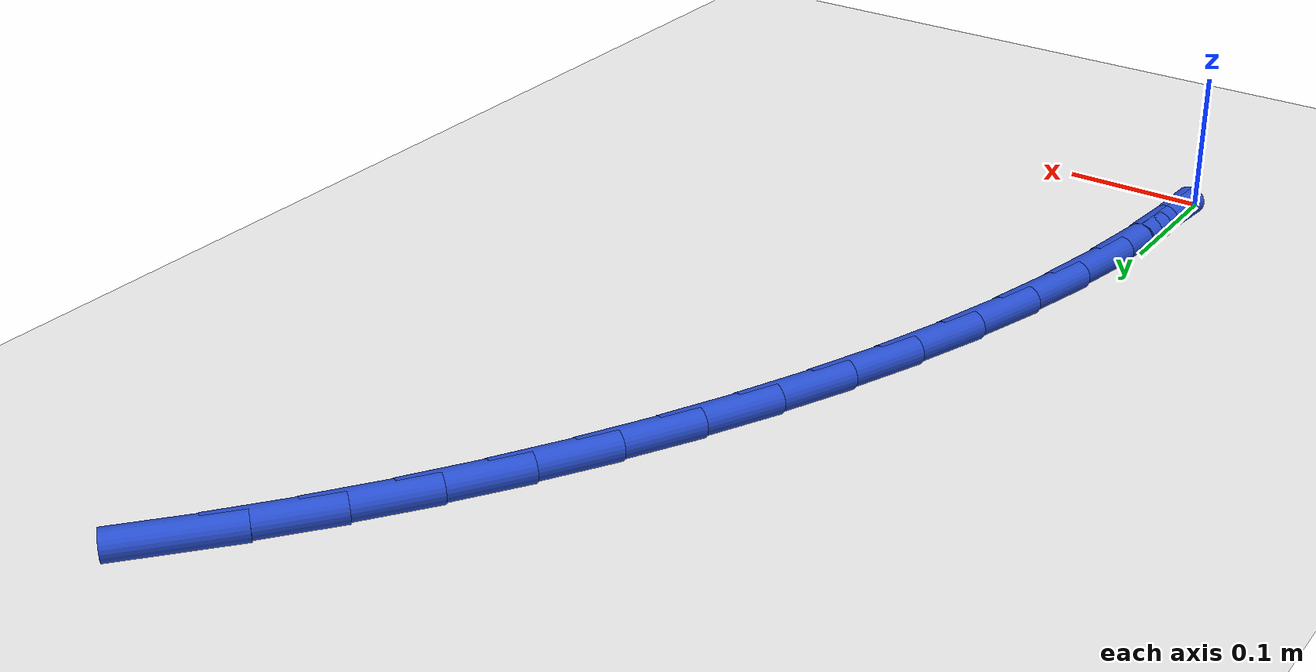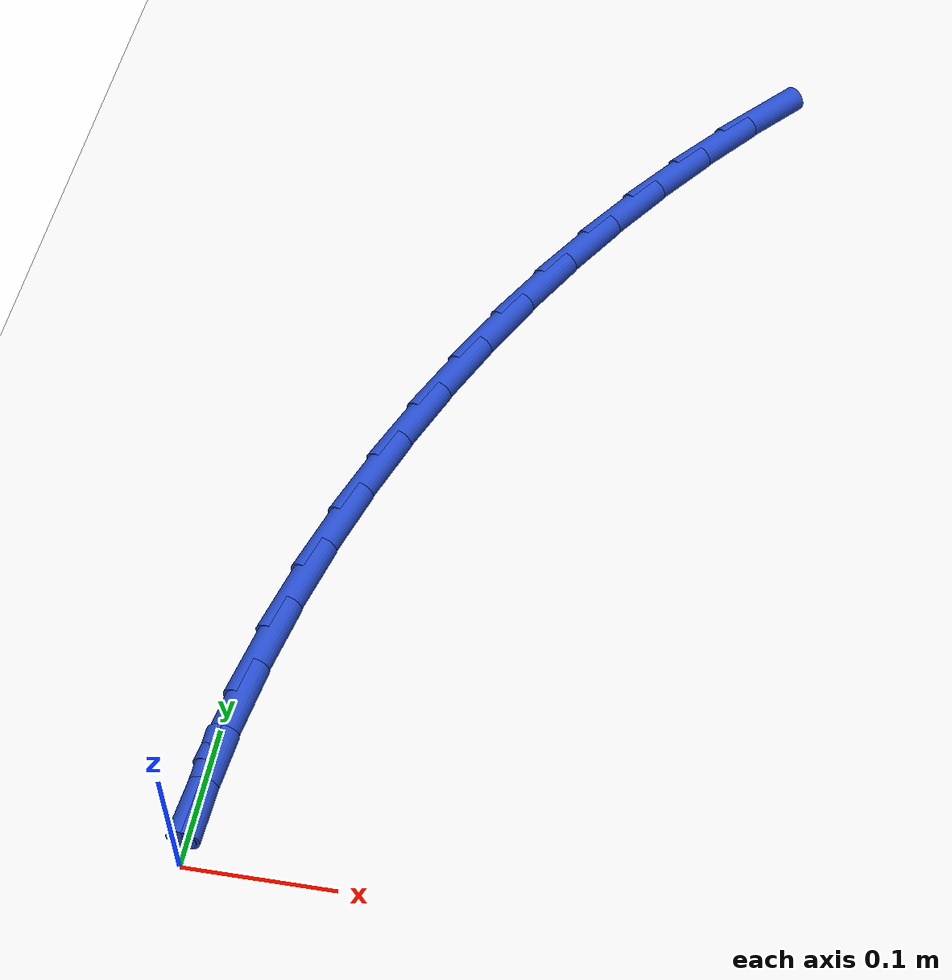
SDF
<sdf version="1.6">
 <world name="default">
  <model name="ground_plane">
   <static>1</static>
   <link name="link">
    <collision name="collision">
     <geometry><plane><normal>0 0 1</normal><size>100 100</size></plane></geometry>
     <surface><friction><ode><mu>100</mu><mu2>50</mu2></ode></friction></surface>
    </collision>
    <visual name="visual">
     <cast_shadows>0</cast_shadows>
     <geometry><plane><normal>0 0 1</normal><size>100 100</size></plane></geometry>
     <material>
      <script><uri>file://media/materials/scripts/gazebo.material</uri><name>Gazebo/WhiteGlow</name></script>
     </material>
    </visual>
   </link>
  </model>
  <model name="line">
   <link name="link_1">
    <pose>0.001959991118917127 0.05298200897245474 0.01 0 1.57 1.4782607559850482</pose>
    <collision name="collision">
     <geometry><cylinder><radius>0.01</radius><length>0.08</length></cylinder></geometry>
    </collision>
    <visual name="visual">
     <material>
      <script><name>Gazebo/Blue</name><uri>file://media/materials/scripts/gazebo.material</uri></script>
     </material>
     <geometry><cylinder><radius>0.01</radius><length>0.08</length></cylinder></geometry>
    </visual>
   </link>
   <link name="link_2">
    <pose>0.0068634800708201734 0.10582098749493439 0.01 0 1.57 1.4248598166122215</pose>
    <collision name="collision">
     <geometry><cylinder><radius>0.01</radius><length>0.08</length></cylinder></geometry>
    </collision>
    <visual name="visual">
     <material>
      <script><name>Gazebo/Blue</name><uri>file://media/materials/scripts/gazebo.material</uri></script>
     </material>
     <geometry><cylinder><radius>0.01</radius><length>0.08</length></cylinder></geometry>
    </visual>
   </link>
   <link name="link_3">
    <pose>0.014593983377683063 0.15841608639973329 0.01 0 1.57 1.3735671283131035</pose>
    <collision name="collision">
     <geometry><cylinder><radius>0.01</radius><length>0.08</length></cylinder></geometry>
    </collision>
    <visual name="visual">
     <material>
      <script><name>Gazebo/Blue</name><uri>file://media/materials/scripts/gazebo.material</uri></script>
     </material>
     <geometry><cylinder><radius>0.01</radius><length>0.08</length></cylinder></geometry>
    </visual>
   </link>
   <link name="link_4">
    <pose>0.025035017561479744 0.21066645651914548 0.01 0 1.57 1.3242942701146319</pose>
    <collision name="collision">
     <geometry><cylinder><radius>0.01</radius><length>0.08</length></cylinder></geometry>
    </collision>
    <visual name="visual">
     <material>
      <script><name>Gazebo/Blue</name><uri>file://media/materials/scripts/gazebo.material</uri></script>
     </material>
     <geometry><cylinder><radius>0.01</radius><length>0.08</length></cylinder></geometry>
    </visual>
   </link>
   <link name="link_5">
    <pose>0.038070099144184154 0.26247124868546506 0.01 0 1.57 1.2769226031562628</pose>
    <collision name="collision">
     <geometry><cylinder><radius>0.01</radius><length>0.08</length></cylinder></geometry>
    </collision>
    <visual name="visual">
     <material>
      <script><name>Gazebo/Blue</name><uri>file://media/materials/scripts/gazebo.material</uri></script>
     </material>
     <geometry><cylinder><radius>0.01</radius><length>0.08</length></cylinder></geometry>
    </visual>
   </link>
   <link name="link_6">
    <pose>0.05358274464777027 0.3137296137309864 0.01 0 1.57 1.2313106546863983</pose>
    <collision name="collision">
     <geometry><cylinder><radius>0.01</radius><length>0.08</length></cylinder></geometry>
    </collision>
    <visual name="visual">
     <material>
      <script><name>Gazebo/Blue</name><uri>file://media/materials/scripts/gazebo.material</uri></script>
     </material>
     <geometry><cylinder><radius>0.01</radius><length>0.08</length></cylinder></geometry>
    </visual>
   </link>
   <link name="link_7">
    <pose>0.07145647059421201 0.36434070248800343 0.01 0 1.57 1.1873002035129074</pose>
    <collision name="collision">
     <geometry><cylinder><radius>0.01</radius><length>0.08</length></cylinder></geometry>
    </collision>
    <visual name="visual">
     <material>
      <script><name>Gazebo/Blue</name><uri>file://media/materials/scripts/gazebo.material</uri></script>
     </material>
     <geometry><cylinder><radius>0.01</radius><length>0.08</length></cylinder></geometry>
    </visual>
   </link>
   <link name="link_8">
    <pose>0.09157479350548337 0.41420366578881057 0.01 0 1.57 1.1447210333423858</pose>
    <collision name="collision">
     <geometry><cylinder><radius>0.01</radius><length>0.08</length></cylinder></geometry>
    </collision>
    <visual name="visual">
     <material>
      <script><name>Gazebo/Blue</name><uri>file://media/materials/scripts/gazebo.material</uri></script>
     </material>
     <geometry><cylinder><radius>0.01</radius><length>0.08</length></cylinder></geometry>
    </visual>
   </link>
   <link name="link_9">
    <pose>0.11382122990355822 0.4632176544657016 0.01 0 1.57 1.1032188579884377</pose>
    <collision name="collision">
     <geometry><cylinder><radius>0.01</radius><length>0.08</length></cylinder></geometry>
    </collision>
    <visual name="visual">
     <material>
      <script><name>Gazebo/Blue</name><uri>file://media/materials/scripts/gazebo.material</uri></script>
     </material>
     <geometry><cylinder><radius>0.01</radius><length>0.08</length></cylinder></geometry>
    </visual>
   </link>
   <link name="link_10">
    <pose>0.13809004480738776 0.5112821354535709 0.01 0 1.57 1.0618672719962492</pose>
    <collision name="collision">
     <geometry><cylinder><radius>0.01</radius><length>0.08</length></cylinder></geometry>
    </collision>
    <visual name="visual">
     <material>
      <script><name>Gazebo/Blue</name><uri>file://media/materials/scripts/gazebo.material</uri></script>
     </material>
     <geometry><cylinder><radius>0.01</radius><length>0.08</length></cylinder></geometry>
    </visual>
   </link>
   <link name="link_11">
    <pose>0.16432269210674597 0.5582979634650432 0.01 0 1.57 1.0203414045414447</pose>
    <collision name="collision">
     <geometry><cylinder><radius>0.01</radius><length>0.08</length></cylinder></geometry>
    </collision>
    <visual name="visual">
     <material>
      <script><name>Gazebo/Blue</name><uri>file://media/materials/scripts/gazebo.material</uri></script>
     </material>
     <geometry><cylinder><radius>0.01</radius><length>0.08</length></cylinder></geometry>
    </visual>
   </link>
   <link name="link_12">
    <pose>0.19247357197136053 0.6041663739499532 0.01 0 1.57 0.9785336994616114</pose>
    <collision name="collision">
     <geometry><cylinder><radius>0.01</radius><length>0.08</length></cylinder></geometry>
    </collision>
    <visual name="visual">
     <material>
      <script><name>Gazebo/Blue</name><uri>file://media/materials/scripts/gazebo.material</uri></script>
     </material>
     <geometry><cylinder><radius>0.01</radius><length>0.08</length></cylinder></geometry>
    </visual>
   </link>
   <link name="link_13">
    <pose>0.22249708492343098 0.6487886023685016 0.01 0 1.57 0.9363385665461901</pose>
    <collision name="collision">
     <geometry><cylinder><radius>0.01</radius><length>0.08</length></cylinder></geometry>
    </collision>
    <visual name="visual">
     <material>
      <script><name>Gazebo/Blue</name><uri>file://media/materials/scripts/gazebo.material</uri></script>
     </material>
     <geometry><cylinder><radius>0.01</radius><length>0.08</length></cylinder></geometry>
    </visual>
   </link>
   <link name="link_14">
    <pose>0.25434763148515716 0.6920658841808893 0.01 0 1.57 0.8936532042958819</pose>
    <collision name="collision">
     <geometry><cylinder><radius>0.01</radius><length>0.08</length></cylinder></geometry>
    </collision>
    <visual name="visual">
     <material>
      <script><name>Gazebo/Blue</name><uri>file://media/materials/scripts/gazebo.material</uri></script>
     </material>
     <geometry><cylinder><radius>0.01</radius><length>0.08</length></cylinder></geometry>
    </visual>
   </link>
   <link name="link_15">
    <pose>0.2879796121787385 0.7338994548473169 0.01 0 1.57 0.8503785895861006</pose>
    <collision name="collision">
     <geometry><cylinder><radius>0.01</radius><length>0.08</length></cylinder></geometry>
    </collision>
    <visual name="visual">
     <material>
      <script><name>Gazebo/Blue</name><uri>file://media/materials/scripts/gazebo.material</uri></script>
     </material>
     <geometry><cylinder><radius>0.01</radius><length>0.08</length></cylinder></geometry>
    </visual>
   </link>
   <link name="link_131">
    <pose>0.0019877983814216814 0.052977338259261396 0.01 0 1.57 1.533292247200399</pose>
    <collision name="collision">
     <geometry><cylinder><radius>0.01</radius><length>0.08</length></cylinder></geometry>
    </collision>
    <visual name="visual">
     <material>
      <script><name>Gazebo/Blue</name><uri>file://media/materials/scripts/gazebo.material</uri></script>
     </material>
     <geometry><cylinder><radius>0.01</radius><length>0.08</length></cylinder></geometry>
    </visual>
   </link>
  </model>
 </world>
</sdf>
